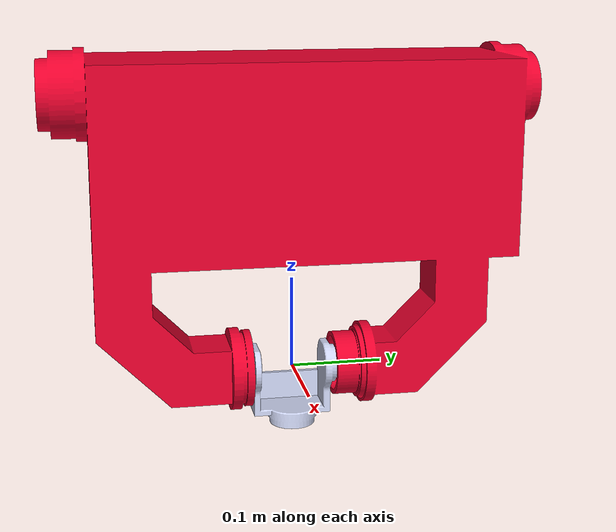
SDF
<?xml version='1.0'?>
<sdf version='1.6'>
  <model name='TEO_trunk'>

    <link name='AxialTrunk_link'>
      <pose>0 0 0 0 -0 0</pose>
      <inertial>
        <pose>-0.002235 -0.000979 -0.018814 0 -0 0</pose>
        <mass>1</mass>
        <inertia>
          <ixx>0.001977587</ixx>
          <ixy>0.00000206</ixy>
          <ixz>0.0000297</ixz>
          <iyy>0.000899729</iyy>
          <iyz>-0.00000307</iyz>
          <izz>0.001471749</izz>
        </inertia>
      </inertial>
      <visual name='AxialTrunk_visual'>
        <geometry>
          <mesh>
            <uri>model://teo/meshes/visual/AxialWaist.dae</uri>
          </mesh>
        </geometry>
        <material>
          <ambient>0.792157 0.819608 0.933333 1</ambient>
          <diffuse>0.792157 0.819608 0.933333 1</diffuse>
          <specular>0.633726 0.655686 0.746667 1</specular>
          <emissive>0 0 0 1</emissive>
        </material>
      </visual>
      <collision name='AxialTrunk_collision'>
        <geometry>
          <mesh>
            <uri>model://teo/meshes/collision/AxialWaist.stl</uri>
          </mesh>
        </geometry>
      </collision>
    </link>

    <joint name='AxialTrunk' type='revolute'>
      <parent>TEO::RootWaist_links</parent>
      <child>TEO_trunk::AxialTrunk_link</child>
      <axis>
        <xyz>0 0 1</xyz>
        <limit>
          <lower>-1.03</lower>
          <upper>0.81</upper>
        </limit>
        <dynamics>
          <damping>0.001</damping>
          <friction>0.7</friction>
        </dynamics>
      </axis>
    </joint>

    <link name='FrontalTrunk_link'>
      <pose>0 0 0 0 -0 0</pose>
      <inertial>
        <pose>0.032985 -0.007876 0.220667 0 -0 0</pose>
        <mass>14.23545</mass>
        <inertia>
          <ixx>0.33566514</ixx>
          <ixy>0.000162127</ixy>
          <ixz>0.011858221</ixz>
          <iyy>0.126531585</iyy>
          <iyz>0.000914091</iyz>
          <izz>0.263359225</izz>
        </inertia>
      </inertial>
      <visual name='FrontalTrunk_visual'>
        <geometry>
          <mesh>
            <uri>model://teo/meshes/visual/RootWaist.dae</uri>
          </mesh>
        </geometry>
        <material>
          <ambient>0.905882 0 0.172549 1</ambient>
          <diffuse>0.905882 0 0.172549 1</diffuse>
          <specular>0.452941 0 0.086275 1</specular>
          <emissive>0 0 0 1</emissive>
        </material>
      </visual>
      <collision name='FrontalTrunk_collision'>
        <geometry>
          <mesh>
            <uri>model://teo/meshes/collision/RootWaist.stl</uri>
          </mesh>
        </geometry>
      </collision>
      <sensor name='waist_imu' type='imu'>
        <pose>0 0 0.05 0 3.14159 0</pose>
        <always_on>true</always_on>
        <update_rate>200</update_rate>
        <plugin name='waist_imu_plugin' filename='libgazebo_yarp_imu.so'>
          <yarpConfigurationString>(yarpDeviceName imu) (disableImplicitNetworkWrapper)</yarpConfigurationString>
        </plugin>
      </sensor>
    </link>

    <joint name='FrontalTrunk' type='revolute'>
      <parent>TEO_trunk::AxialTrunk_link</parent>
      <child>TEO_trunk::FrontalTrunk_link</child>
      <axis>
        <xyz>0 1 0</xyz>
        <limit>
          <lower>-0.18</lower>
          <upper>1.58</upper>
        </limit>
        <dynamics>
          <damping>0.001</damping>
          <friction>0.7</friction>
        </dynamics>
      </axis>
    </joint>

    <plugin name='controlboard_trunk' filename='libgazebo_yarp_controlboard.so'>
      <yarpConfigurationFile>model://teo/conf/gazebo_teo_trunk.ini</yarpConfigurationFile>
    </plugin>

  </model>
</sdf>
